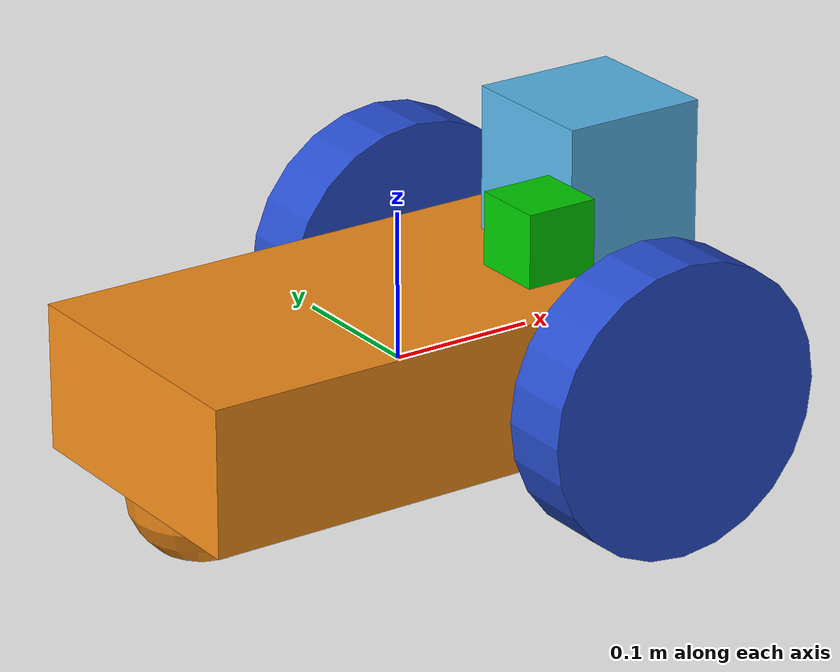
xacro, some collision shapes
<?xml version='1.0'?>

<robot name="diffbot" xmlns:xacro="http://www.ros.org/wiki/xacro">
	<!--calls the macros for robot properties and Gazebo plugin as well as set global parameters for mass and size of IMU and Camera-->

  <xacro:property name="cameraSize"         value="0.05"/>
  <xacro:property name="cameraMass"         value="0.1"/>
  <xacro:property name="imuSize"            value="0.05"/>
  <xacro:property name="imuMass"            value="0.1"/>

  <xacro:property name="r200_cam_rgb_px" value="0.005"/>
  <xacro:property name="r200_cam_rgb_py" value="0.018"/>
  <xacro:property name="r200_cam_rgb_pz" value="0.013"/>
  <xacro:property name="r200_cam_depth_offset" value="0.01"/>

  <xacro:include filename="$(find diffbot)/src/diffbot_description/urdf/diffbot_gazebo_plugins.xacro" />
  <xacro:include filename="$(find diffbot)/src/diffbot_description/urdf/materials.xacro" />
  <xacro:include filename="$(find diffbot)/src/diffbot_description/urdf/macros.xacro" />
		<!--creates the geometry of the differential drive robot which consists of  a rectangular chassis 0.4x0.2x0.1 m, and two cylindrical wheels of radius 0.1m and length 0.05m-->
		<!--Source: richard05. 2020. mybot_ws. https://github.com/richardw05/mybot_ws. accessed: 20 September 2020-->

<!--Chassis geometry. The chassis is used as the BaseLink to which the odom from differential drive Gazebo plugin is linked, making it possible to control the robot through cmd-vel when launching teleop-->
  <link name='chassis'>
    <pose>0 0 0 0 0 0</pose>

    <inertial>
      <mass value="10.0"/>
      <origin xyz="0 0 0" rpy=" 0 0 0"/>
      <inertia
          ixx="0.5" ixy="0" ixz="0"
          iyy="1.0" iyz="0"
          izz="0.1"/>
    </inertial>

    <collision name='collision'>
      <geometry>
        <box size=".4 .2 .1"/>
      </geometry>
    </collision>

    <visual name='chassis_visual'>
      <origin xyz="0 0 0" rpy=" 0 0 0"/>
      <geometry>
        <box size=".4 .2 .1"/>
      </geometry>
    </visual>

    <collision name='collision'>
      <geometry>
        <box size=".4 .2 .1"/>
      </geometry>
    </collision>

    <visual name='chassis_visual'>
      <origin xyz="0 0 0" rpy=" 0 0 0"/>
      <geometry>
        <box size=".4 .2 .1"/>
      </geometry>
    </visual>

    <collision name='caster_collision'>
      <origin xyz="-0.15 0 -0.05" rpy=" 0 0 0"/>
      <geometry>
        <sphere radius="0.05"/>
      </geometry>
      <surface>
        <friction>
          <ode>
            <mu>0</mu>
            <mu2>0</mu2>
            <slip1>1.0</slip1>
            <slip2>1.0</slip2>
          </ode>
        </friction>
      </surface>
    </collision>

    <visual name='caster_visual'>
      <origin xyz="-0.15 0 -0.05" rpy=" 0 0 0"/>
      <geometry>
        <sphere radius="0.05"/>
      </geometry>
    </visual>
  </link>

	<!--Wheel geometry description-->

  <link name="left_wheel">
    <!--origin xyz="0.1 0.13 0.1" rpy="0 1.5707 1.5707"/-->
    <collision name="collision">
      <origin xyz="0 0 0" rpy="0 1.5707 1.5707"/>
      <geometry>
        <cylinder radius="0.1" length="0.05"/>
      </geometry>
    </collision>
    <visual name="left_wheel_visual">
      <origin xyz="0 0 0" rpy="0 1.5707 1.5707"/>
      <geometry>
        <cylinder radius="0.1" length="0.05"/>
      </geometry>
    </visual>
    <inertial>
      <origin xyz="0 0 0" rpy="0 1.5707 1.5707"/>
      <mass value="5"/>
      <cylinder_inertia m="5" r="0.1" h="0.05"/>
      <inertia
        ixx="1.0" ixy="0.0" ixz="0.0"
        iyy="1.0" iyz="0.0"
        izz="1.0"/>
    </inertial>
  </link>

  <link name="right_wheel">
    <!--origin xyz="0.1 -0.13 0.1" rpy="0 1.5707 1.5707"/-->
    <collision name="collision">
      <origin xyz="0 0 0" rpy="0 1.5707 1.5707"/>
      <geometry>
        <cylinder radius="0.1" length="0.05"/>
      </geometry>
    </collision>
    <visual name="right_wheel_visual">
      <origin xyz="0 0 0" rpy="0 1.5707 1.5707"/>
      <geometry>
        <cylinder radius="0.1" length="0.05"/>
      </geometry>
    </visual>
    <inertial>
      <origin xyz="0 0 0" rpy="0 1.5707 1.5707"/>
      <mass value="5"/>
      <cylinder_inertia m="5" r="0.1" h="0.05"/>
      <inertia
        ixx="1.0" ixy="0.0" ixz="0.0"
        iyy="1.0" iyz="0.0"
        izz="1.0"/>
    </inertial>
  </link>

  <joint type="continuous" name="left_wheel_hinge">
    <origin xyz="0.1 0.15 0" rpy="0 0 0"/>
    <child link="left_wheel"/>
    <parent link="chassis"/>
    <axis xyz="0 1 0" rpy="0 0 0"/>
    <limit effort="100" velocity="100"/>
    <joint_properties damping="0.0" friction="0.0"/>
  </joint>

  <joint type="continuous" name="right_wheel_hinge">
    <origin xyz="0.1 -0.15 0" rpy="0 0 0"/>
    <child link="right_wheel"/>
    <parent link="chassis"/>
    <axis xyz="0 1 0" rpy="0 0 0"/>
    <limit effort="100" velocity="100"/>
    <joint_properties damping="0.0" friction="0.0"/>
  </joint>

	<!--create the imu0 model which links to the imu plugin for Gazebo-->
  <link name="imu_link_0">
    <collision>
      <origin xyz="0 0 0" rpy="0 0 0"/>
      <geometry>
        <box size="0.1 0.1 0.1"/>
      </geometry>
    </collision>

    <visual>
      <origin xyz="0 0 0" rpy="0 0 0"/>
      <geometry>
        <box size=".1 .1 .1"/>
      </geometry>
      <material name="green"/>
    </visual>

    <inertial>
      <mass value="${imuMass}" />
      <origin xyz="0 0 0" rpy="0 0 0"/>
      <box_inertia m="${imuMass}" x="0.4" y="0.2" z="0.1" />
      <inertia ixx="1e-6" ixy="0" ixz="0" iyy="1e-6" iyz="0" izz="1e-6" />
    </inertial>
  </link>

  <joint name="imu_joint_0" type="fixed">
    <axis xyz="0 0 0" />
    <origin xyz="0 0 0" rpy="0 0 0"/>
    <parent link="chassis"/>
    <child link="imu_link_0"/>
  </joint>

	<!--camera sensor-->
  <joint name="camera_joint" type="fixed">
    <origin xyz="0.064 -0.065 0.094" rpy="0 0 0"/>
    <parent link="chassis"/>
    <child link="camera_link"/>
  </joint>

  <link name="camera_link">
    <collision>
      <origin xyz="0 0 0" rpy="0 0 0"/>
      <geometry>
        <box size="${cameraSize} ${cameraSize} ${cameraSize}"/>
      </geometry>
    </collision>

    <visual>
      <origin xyz="0 0 0" rpy="0 0 0"/>
      <geometry>
        <box size="${cameraSize} ${cameraSize} ${cameraSize}"/>
      </geometry>
      <material name="green"/>
    </visual>

    <inertial>
      <mass value="${cameraMass}" />
      <origin xyz="0 0 0" rpy="0 0 0"/>
      <box_inertia m="${cameraMass}" x="${cameraSize}" y="${cameraSize}" z="${cameraSize}" />
      <inertia ixx="1e-6" ixy="0" ixz="0" iyy="1e-6" iyz="0" izz="1e-6" />
    </inertial>
  </link>

  <joint name="camera_rgb_joint" type="fixed">
    <origin xyz="${r200_cam_rgb_px} ${r200_cam_rgb_py} ${r200_cam_rgb_pz}" rpy="0 0 0"/>
    <parent link="camera_link"/>
    <child link="camera_rgb_frame"/>
  </joint>
  <link name="camera_rgb_frame"/>

  <joint name="camera_rgb_optical_joint" type="fixed">
    <origin xyz="0 0 0" rpy="-1.57 0 -1.57"/>
    <parent link="camera_rgb_frame"/>
    <child link="camera_rgb_optical_frame"/>
  </joint>

  <link name="camera_rgb_optical_frame"/>

  <joint name="camera_depth_joint" type="fixed">
    <origin xyz="${r200_cam_rgb_px} ${r200_cam_rgb_py + r200_cam_depth_offset} ${r200_cam_rgb_pz}" rpy="0 0 0"/>
    <parent link="camera_link"/>
    <child link="camera_depth_frame"/>
  </joint>
  <link name="camera_depth_frame"/>

  <joint name="camera_depth_optical_joint" type="fixed">
    <origin xyz="0 0 0" rpy="-1.57 0 -1.57"/>
    <parent link="camera_depth_frame"/>
    <child link="camera_depth_optical_frame"/>
  </joint>
  <link name="camera_depth_optical_frame"/>

  <!-- Hokuyo Laser -->
  <link name="hokuyo">
    <collision>
      <origin xyz="0 0 0" rpy="0 0 0"/>
      <geometry>
    <box size="0.1 0.1 0.1"/>
      </geometry>
    </collision>

    <visual>
      <origin xyz="0 0 0" rpy="0 0 0"/>
      <geometry>
        <mesh filename="file:$(find diffbot)/src/diffbot_description/meshes/hokuyo.dae"/>
      </geometry>
    </visual>

    <inertial>
      <mass value="1e-5" />
      <origin xyz="0 0 0" rpy="0 0 0"/>
      <inertia ixx="1e-6" ixy="0" ixz="0" iyy="1e-6" iyz="0" izz="1e-6" />
    </inertial>
  </link>

  <joint name="hokuyo_joint" type="fixed">
    <axis xyz="0 1 0" />
    <origin xyz="0.15 0 0.1" rpy="0 0 0"/>
    <parent link="chassis"/>
    <child link="hokuyo"/>
  </joint>
</robot>

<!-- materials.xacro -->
<!--macro defining the colour of the various parts of the differential drive robot-->
	<!--Source: richard05. 2020. mybot_ws. https://github.com/richardw05/mybot_ws. accessed: 20 September 2020-->
<robot>

  <material name="black">
    <color rgba="0.0 0.0 0.0 1.0"/>
  </material>

  <material name="blue">
    <color rgba="0.0 0.0 0.8 1.0"/>
  </material>

  <material name="green">
    <color rgba="0.0 0.8 0.0 1.0"/>
  </material>

  <material name="grey">
    <color rgba="0.2 0.2 0.2 1.0"/>
  </material>

  <material name="orange">
    <color rgba="${255/255} ${108/255} ${10/255} 1.0"/>
  </material>

  <material name="brown">
    <color rgba="${222/255} ${207/255} ${195/255} 1.0"/>
  </material>

  <material name="red">
    <color rgba="0.8 0.0 0.0 1.0"/>
  </material>

  <material name="white">
    <color rgba="1.0 1.0 1.0 1.0"/>
  </material>

</robot>
